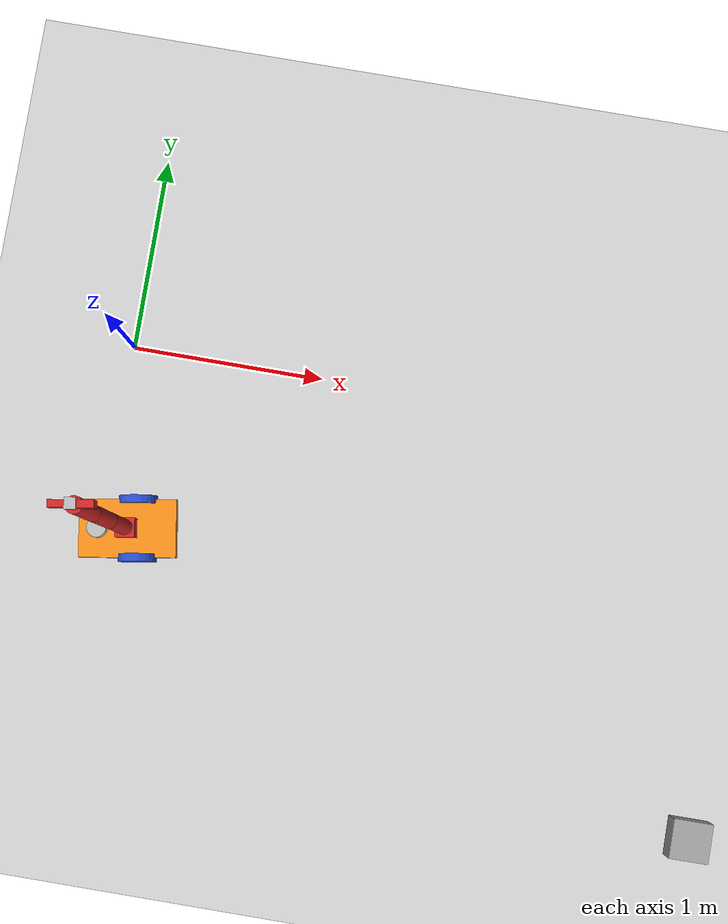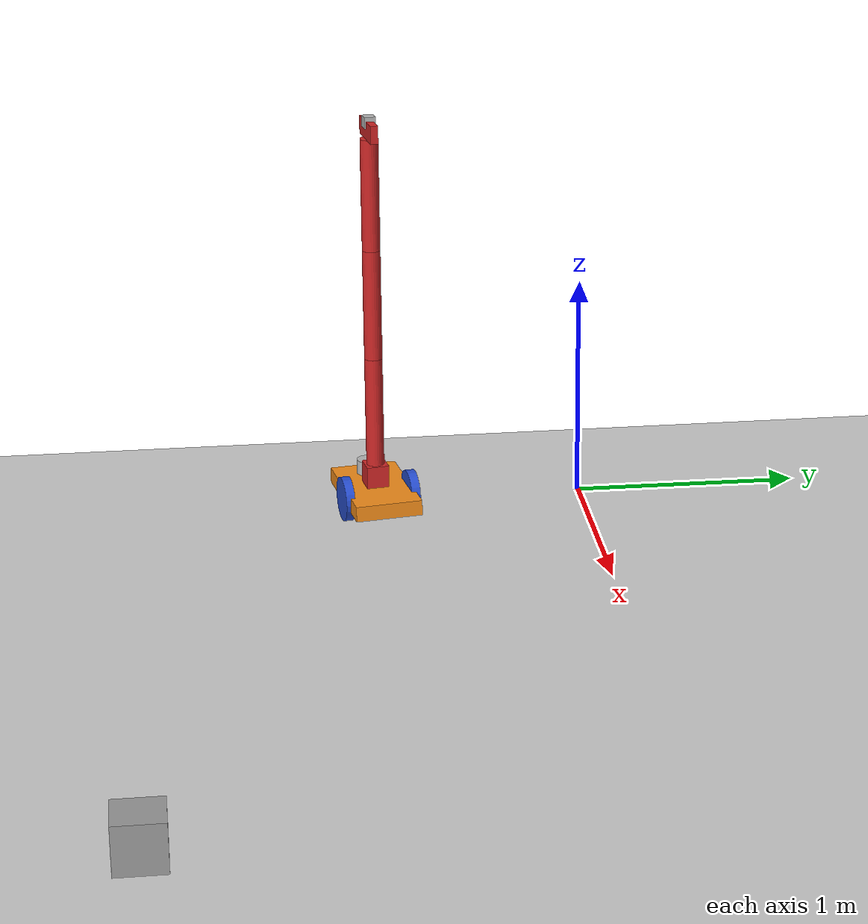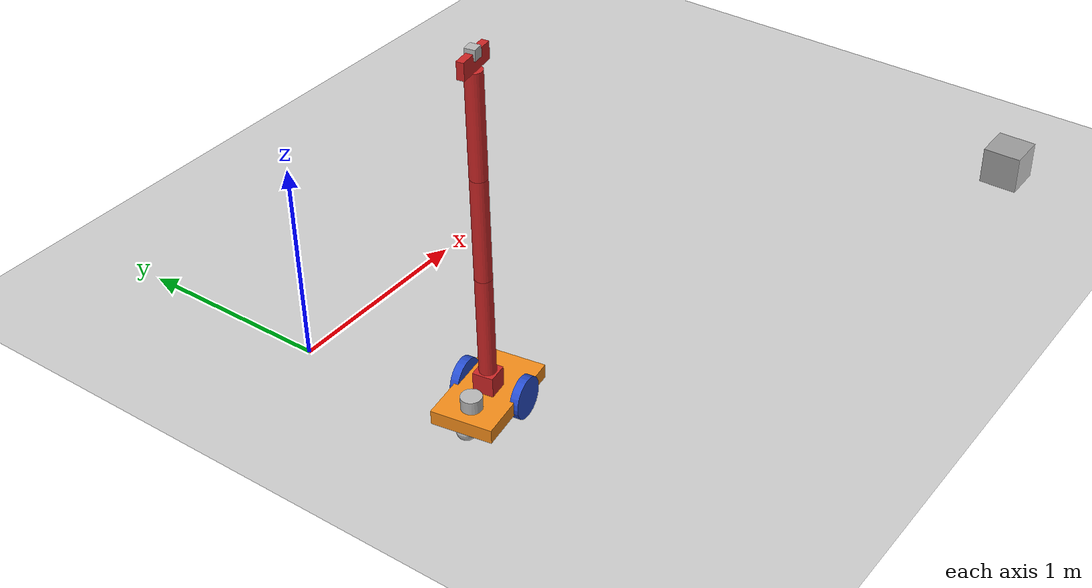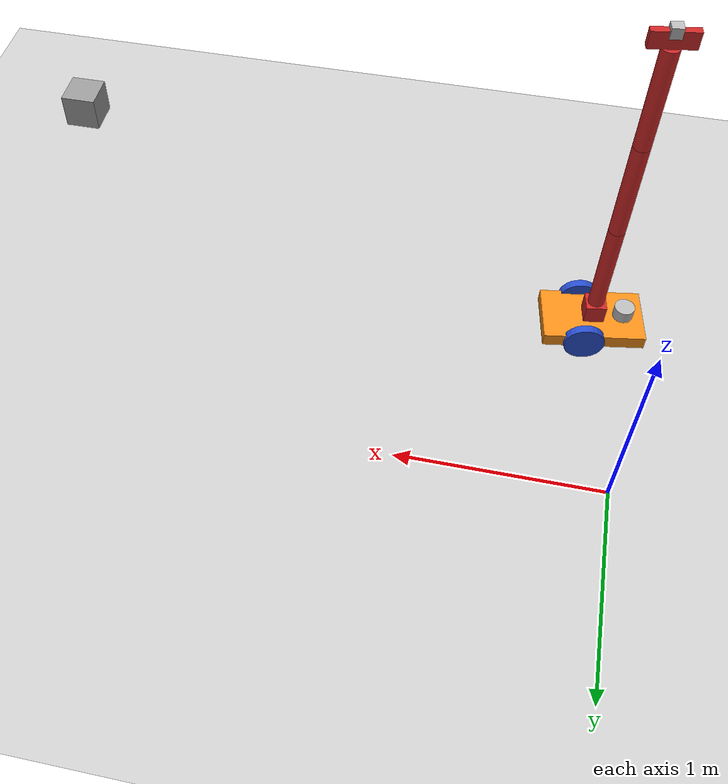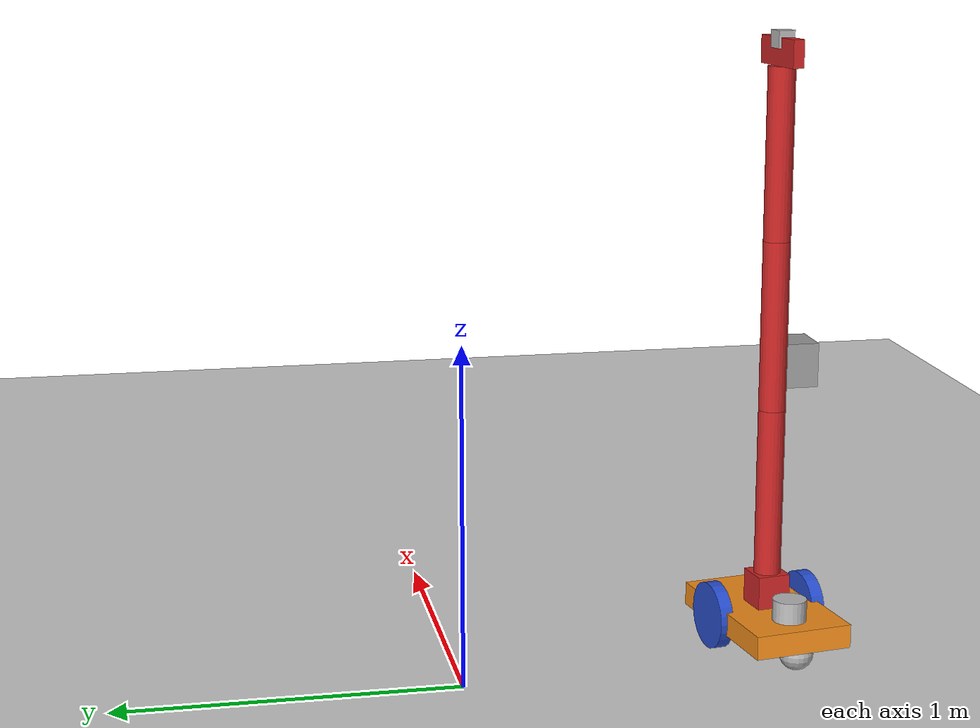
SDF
<sdf version="1.7">
 <world name="default">
  <model name="ground_plane">
   <static>1</static>
   <link name="link">
    <collision name="collision">
     <geometry><plane><normal>0 0 1</normal><size>100 100</size></plane></geometry>
     <surface>
      <contact><collide_bitmask>65535</collide_bitmask></contact>
      <friction><ode><mu>100</mu><mu2>50</mu2></ode></friction>
     </surface>
    </collision>
    <visual name="visual">
     <cast_shadows>0</cast_shadows>
     <geometry><plane><normal>0 0 1</normal><size>100 100</size></plane></geometry>
     <material>
      <script><uri>file://media/materials/scripts/gazebo.material</uri><name>Gazebo/Grey</name></script>
     </material>
    </visual>
   </link>
  </model>
  <model name="marker15_box">
   <link name="marker">
    <inertial>
     <mass>0.1</mass>
     <inertia><ixx>0</ixx><ixy>0</ixy><ixz>0</ixz><iyy>0</iyy><iyz>0</iyz><izz>0</izz></inertia>
    </inertial>
    <self_collide>1</self_collide>
    <pose>-0.76428 -0.101106 0.120004 -0.015494 1.56996 -0.015507</pose>
    <visual name="visual">
     <geometry><box><size>0.2 0.2 0.001</size></box></geometry>
     <material>
      <script>
       <uri>model://marker15/material/scripts</uri>
       <uri>model://marker15/material/textures</uri>
       <name>Aruco/marker15</name>
      </script>
      <shader type="pixel"><normal_map>__default__</normal_map></shader>
      <emissive>0 0 0 1</emissive>
      <ambient>1 1 1 1</ambient>
      <diffuse>1 1 1 1</diffuse>
      <specular>0 0 0 1</specular>
     </material>
    </visual>
    <collision name="collision">
     <geometry><box><size>0.2 0.2 0.02</size></box></geometry>
     <surface>
      <friction>
       <ode><mu>1</mu><mu2>1</mu2><fdir1>0 0 0</fdir1><slip1>0</slip1><slip2>0</slip2></ode>
       <torsional>
        <coefficient>1</coefficient>
        <patch_radius>0</patch_radius>
        <surface_radius>0</surface_radius>
        <use_patch_radius>1</use_patch_radius>
        <ode><slip>0</slip></ode>
       </torsional>
      </friction>
      <bounce><restitution_coefficient>0</restitution_coefficient><threshold>1e+06</threshold></bounce>
      <contact>
       <collide_without_contact>0</collide_without_contact>
       <collide_without_contact_bitmask>1</collide_without_contact_bitmask>
       <collide_bitmask>1</collide_bitmask>
       <ode>
        <soft_cfm>0</soft_cfm>
        <soft_erp>0.2</soft_erp>
        <kp>1e+13</kp>
        <kd>1</kd>
        <max_vel>0.01</max_vel>
        <min_depth>0</min_depth>
       </ode>
       <bullet>
        <split_impulse>1</split_impulse>
        <split_impulse_penetration_threshold>-0.01</split_impulse_penetration_threshold>
        <soft_cfm>0</soft_cfm>
        <soft_erp>0.2</soft_erp>
        <kp>1e+13</kp>
        <kd>1</kd>
       </bullet>
      </contact>
     </surface>
    </collision>
   </link>
   <link name="link_1">
    <inertial>
     <mass>1</mass>
     <inertia>
      <ixx>0.166667</ixx>
      <ixy>0</ixy>
      <ixz>0</ixz>
      <iyy>0.166667</iyy>
      <iyz>0</iyz>
      <izz>0.166667</izz>
     </inertia>
    </inertial>
    <pose>-0.86428 -0.101106 0.12 -1.3e-05 -4.2e-05 0</pose>
    <visual name="visual">
     <geometry><box><size>0.2 0.2 0.2</size></box></geometry>
     <material>
      <lighting>1</lighting>
      <script><uri>file://media/materials/scripts/gazebo.material</uri><name>Gazebo/Grey</name></script>
      <shader type="pixel"><normal_map>__default__</normal_map></shader>
      <emissive>0 0 0 1</emissive>
      <ambient>0.3 0.3 0.3 1</ambient>
      <diffuse>0.7 0.7 0.7 1</diffuse>
      <specular>0.01 0.01 0.01 1</specular>
     </material>
    </visual>
    <collision name="collision">
     <geometry><box><size>0.2 0.2 0.2</size></box></geometry>
     <surface>
      <friction>
       <ode><mu>1</mu><mu2>1</mu2><fdir1>0 0 0</fdir1><slip1>0</slip1><slip2>0</slip2></ode>
       <torsional>
        <coefficient>1</coefficient>
        <patch_radius>0</patch_radius>
        <surface_radius>0</surface_radius>
        <use_patch_radius>1</use_patch_radius>
        <ode><slip>0</slip></ode>
       </torsional>
      </friction>
      <bounce><restitution_coefficient>0</restitution_coefficient><threshold>1e+06</threshold></bounce>
      <contact>
       <collide_without_contact>0</collide_without_contact>
       <collide_without_contact_bitmask>1</collide_without_contact_bitmask>
       <collide_bitmask>1</collide_bitmask>
       <ode>
        <soft_cfm>0</soft_cfm>
        <soft_erp>0.2</soft_erp>
        <kp>1e+13</kp>
        <kd>1</kd>
        <max_vel>0.01</max_vel>
        <min_depth>0</min_depth>
       </ode>
       <bullet>
        <split_impulse>1</split_impulse>
        <split_impulse_penetration_threshold>-0.01</split_impulse_penetration_threshold>
        <soft_cfm>0</soft_cfm>
        <soft_erp>0.2</soft_erp>
        <kp>1e+13</kp>
        <kd>1</kd>
       </bullet>
      </contact>
     </surface>
    </collision>
   </link>
   <joint name="link_1_JOINT_3" type="fixed">
    <parent>link_1</parent>
    <child>marker</child>
    <physics>
     <ode><limit><cfm>0</cfm><erp>0.2</erp></limit><suspension><cfm>0</cfm><erp>0.2</erp></suspension></ode>
    </physics>
   </joint>
   <static>0</static>
   <pose>3.33725 -2.89021 -0.02001 1.3e-05 1.9e-05 -1.56766</pose>
  </model>
  <model name="robot">
   <link name="base_link">
    <inertial>
     <pose>0.013636 0 0.095455 0 -0 0</pose>
     <mass>11</mass>
     <inertia>
      <ixx>0.0432727</ixx>
      <ixy>0</ixy>
      <ixz>0.00681818</ixz>
      <iyy>0.130394</iyy>
      <iyz>0</iyz>
      <izz>0.127913</izz>
     </inertia>
    </inertial>
    <collision name="base_link_fixed_joint_lump__collision_chassis_collision">
     <geometry><box><size>0.5 0.3 0.07</size></box></geometry>
    </collision>
    <collision name="base_link_fixed_joint_lump__caster_front_collision_collision_1">
     <pose>0.35 0 -0.05 0 -0 0</pose>
     <geometry><sphere><radius>0.05</radius></sphere></geometry>
    </collision>
    <collision name="base_link_fixed_joint_lump__laser_collision_2">
     <pose>0.15 0 0.05 0 -0 0</pose>
     <geometry><cylinder><length>0.1</length><radius>0.05</radius></cylinder></geometry>
    </collision>
    <visual name="base_link_visual">
     <geometry><box><size>0.5 0.3 0.07</size></box></geometry>
     <material>
      <script><name>Gazebo/Orange</name><uri>file://media/materials/scripts/gazebo.material</uri></script>
     </material>
    </visual>
    <visual name="base_link_fixed_joint_lump__caster_front_visual_visual_1">
     <pose>0.2 0 -0.05 0 -0 0</pose>
     <geometry><sphere><radius>0.05</radius></sphere></geometry>
    </visual>
    <visual name="base_link_fixed_joint_lump__laser_visual_2">
     <pose>0.15 0 0.05 0 -0 0</pose>
     <geometry><cylinder><length>0.1</length><radius>0.05</radius></cylinder></geometry>
    </visual>
    <sensor name="head_hokuyo_sensor" type="ray">
     <visualize>0</visualize>
     <update_rate>20</update_rate>
     <ray>
      <scan>
       <horizontal>
        <samples>720</samples>
        <resolution>1</resolution>
        <min_angle>-1.5708</min_angle>
        <max_angle>1.5708</max_angle>
       </horizontal>
       <vertical><samples>1</samples><min_angle>0</min_angle><max_angle>0</max_angle></vertical>
      </scan>
      <range><min>0.1</min><max>10</max><resolution>0.01</resolution></range>
      <noise><type>gaussian</type><mean>0</mean><stddev>0.01</stddev></noise>
     </ray>
     <plugin name="gazebo_ros_head_hokuyo_controller" filename="libgazebo_ros_laser.so">
      <topicName>scan</topicName>
      <frameName>laser</frameName>
      <robotNamespace>/</robotNamespace>
     </plugin>
     <pose>0.15 0 0.05 0 -0 0</pose>
    </sensor>
   </link>
   <joint name="arm_base_to_base" type="revolute">
    <pose relative_to="base_link">0 0 0.085 0 -0 0</pose>
    <parent>base_link</parent>
    <child>arm_base_link</child>
    <axis>
     <xyz>0 0 1</xyz>
     <limit><lower>-3.14</lower><upper>3.14</upper><effort>1000</effort><velocity>0.2</velocity></limit>
     <dynamics><spring_reference>0</spring_reference><spring_stiffness>0</spring_stiffness></dynamics>
    </axis>
   </joint>
   <link name="arm_base_link">
    <pose relative_to="arm_base_to_base">0 0 0 0 -0 0</pose>
    <inertial>
     <mass>1</mass>
     <inertia>
      <ixx>4.16667e-05</ixx>
      <ixy>0</ixy>
      <ixz>0</ixz>
      <iyy>4.16667e-05</iyy>
      <iyz>0</iyz>
      <izz>4.16667e-05</izz>
     </inertia>
    </inertial>
    <collision name="arm_base_link_collision"><geometry><box><size>0.1 0.1 0.1</size></box></geometry></collision>
    <visual name="arm_base_link_visual">
     <geometry><box><size>0.1 0.1 0.1</size></box></geometry>
     <material>
      <script><name>Gazebo/Red</name><uri>file://media/materials/scripts/gazebo.material</uri></script>
     </material>
    </visual>
   </link>
   <joint name="arm_joint_01" type="revolute">
    <pose relative_to="arm_base_link">0 0 0.05 0 -0 0</pose>
    <parent>arm_base_link</parent>
    <child>arm_link_01</child>
    <axis>
     <xyz>1 0 0</xyz>
     <limit><lower>-1.57</lower><upper>1.57</upper><effort>1000</effort><velocity>0.2</velocity></limit>
     <dynamics><spring_reference>0</spring_reference><spring_stiffness>0</spring_stiffness></dynamics>
    </axis>
   </joint>
   <link name="arm_link_01">
    <pose relative_to="arm_joint_01">0 0 0 0 -0 0</pose>
    <inertial>
     <mass>0.01</mass>
     <inertia>
      <ixx>1.0279e-05</ixx>
      <ixy>0</ixy>
      <ixz>0</ixz>
      <iyy>1.0279e-05</iyy>
      <iyz>0</iyz>
      <izz>7.225e-06</izz>
     </inertia>
    </inertial>
    <collision name="arm_link_01_collision">
     <pose>0 0 0.25 0 -0 0</pose>
     <geometry><cylinder><length>0.5</length><radius>0.04</radius></cylinder></geometry>
    </collision>
    <visual name="arm_link_01_visual">
     <pose>0 0 0.25 0 -0 0</pose>
     <geometry><cylinder><length>0.5</length><radius>0.04</radius></cylinder></geometry>
     <material>
      <script><name>Gazebo/Red</name><uri>file://media/materials/scripts/gazebo.material</uri></script>
     </material>
    </visual>
   </link>
   <joint name="arm_joint_02" type="revolute">
    <pose relative_to="arm_link_01">0 0 0.5 0 -0 0</pose>
    <parent>arm_link_01</parent>
    <child>arm_link_02</child>
    <axis>
     <xyz>1 0 0</xyz>
     <limit><lower>-3</lower><upper>3</upper><effort>1000</effort><velocity>0.2</velocity></limit>
     <dynamics><spring_reference>0</spring_reference><spring_stiffness>0</spring_stiffness></dynamics>
    </axis>
    <physics>
     <provide_feedback>1</provide_feedback>
     <ode><limit><cfm>0</cfm><erp>0.2</erp></limit><provide_feedback>1</provide_feedback></ode>
    </physics>
   </joint>
   <link name="arm_link_02">
    <pose relative_to="arm_joint_02">0 0 0 0 -0 0</pose>
    <inertial>
     <mass>0.01</mass>
     <inertia>
      <ixx>1.0279e-05</ixx>
      <ixy>0</ixy>
      <ixz>0</ixz>
      <iyy>1.0279e-05</iyy>
      <iyz>0</iyz>
      <izz>7.225e-06</izz>
     </inertia>
    </inertial>
    <collision name="arm_link_02_collision">
     <pose>0 0 0.25 0 -0 0</pose>
     <geometry><cylinder><length>0.5</length><radius>0.04</radius></cylinder></geometry>
    </collision>
    <visual name="arm_link_02_visual">
     <pose>0 0 0.25 0 -0 0</pose>
     <geometry><cylinder><length>0.5</length><radius>0.04</radius></cylinder></geometry>
     <material>
      <script><name>Gazebo/Red</name><uri>file://media/materials/scripts/gazebo.material</uri></script>
     </material>
    </visual>
   </link>
   <joint name="arm_joint_03" type="revolute">
    <pose relative_to="arm_link_02">0 0 0.5 0 -0 0</pose>
    <parent>arm_link_02</parent>
    <child>arm_link_03</child>
    <axis>
     <xyz>1 0 0</xyz>
     <limit><lower>-3</lower><upper>3</upper><effort>1000</effort><velocity>0.2</velocity></limit>
     <dynamics><spring_reference>0</spring_reference><spring_stiffness>0</spring_stiffness></dynamics>
    </axis>
   </joint>
   <link name="arm_link_03">
    <pose relative_to="arm_joint_03">0 0 0 0 -0 0</pose>
    <inertial>
     <mass>0.01</mass>
     <inertia>
      <ixx>1.0279e-05</ixx>
      <ixy>0</ixy>
      <ixz>0</ixz>
      <iyy>1.0279e-05</iyy>
      <iyz>0</iyz>
      <izz>7.225e-06</izz>
     </inertia>
    </inertial>
    <collision name="arm_link_03_collision">
     <pose>0 0 0.25 0 -0 0</pose>
     <geometry><cylinder><length>0.5</length><radius>0.04</radius></cylinder></geometry>
    </collision>
    <visual name="arm_link_03_visual">
     <pose>0 0 0.25 0 -0 0</pose>
     <geometry><cylinder><length>0.5</length><radius>0.04</radius></cylinder></geometry>
     <material>
      <script><name>Gazebo/Red</name><uri>file://media/materials/scripts/gazebo.material</uri></script>
     </material>
    </visual>
   </link>
   <joint name="arm_joint_04" type="revolute">
    <pose relative_to="arm_link_03">0 0 0.5 0 -0 0</pose>
    <parent>arm_link_03</parent>
    <child>cluedo_link</child>
    <axis>
     <xyz>1 0 0</xyz>
     <limit><lower>-1.57</lower><upper>1.57</upper><effort>1000</effort><velocity>0.5</velocity></limit>
     <dynamics><spring_reference>0</spring_reference><spring_stiffness>0</spring_stiffness></dynamics>
    </axis>
   </joint>
   <link name="cluedo_link">
    <pose relative_to="arm_joint_04">0 0 0 0 -0 0</pose>
    <inertial>
     <pose>0 0 0.0001 0 -0 0</pose>
     <mass>0.00501</mass>
     <inertia>
      <ixx>1.1304e-05</ixx>
      <ixy>-1.03398e-25</ixy>
      <ixz>0</ixz>
      <iyy>1.1304e-05</iyy>
      <iyz>0</iyz>
      <izz>8.225e-06</izz>
     </inertia>
    </inertial>
    <collision name="cluedo_link_collision">
     <pose>0 0 0.04 0 -0 1.57</pose>
     <geometry><box><size>0.034 0.2 0.08</size></box></geometry>
    </collision>
    <collision name="cluedo_link_fixed_joint_lump__camera_link_collision_1">
     <pose>0 0 0.075 0 -0 1.57</pose>
     <geometry><box><size>0.05 0.05 0.05</size></box></geometry>
    </collision>
    <visual name="cluedo_link_visual">
     <pose>0 0 0.04 0 -0 1.57</pose>
     <geometry><box><size>0.034 0.2 0.08</size></box></geometry>
     <material>
      <script><name>Gazebo/Red</name><uri>file://media/materials/scripts/gazebo.material</uri></script>
     </material>
    </visual>
    <visual name="cluedo_link_fixed_joint_lump__camera_link_visual_1">
     <pose>0 0 0.075 0 -0 1.57</pose>
     <geometry><box><size>0.05 0.05 0.05</size></box></geometry>
    </visual>
    <sensor name="camera1" type="camera">
     <update_rate>30</update_rate>
     <camera name="head">
      <horizontal_fov>1.39626</horizontal_fov>
      <image><width>800</width><height>800</height><format>R8G8B8</format></image>
      <clip><near>0.02</near><far>300</far></clip>
      <noise><type>gaussian</type><mean>0</mean><stddev>0.007</stddev></noise>
     </camera>
     <plugin name="camera_controller" filename="libgazebo_ros_camera.so">
      <alwaysOn>1</alwaysOn>
      <updateRate>0.0</updateRate>
      <cameraName>robot/camera1</cameraName>
      <imageTopicName>image_raw</imageTopicName>
      <cameraInfoTopicName>camera_info</cameraInfoTopicName>
      <frameName>camera_link</frameName>
      <hackBaseline>0.07</hackBaseline>
      <distortionK1>0.0</distortionK1>
      <distortionK2>0.0</distortionK2>
      <distortionK3>0.0</distortionK3>
      <distortionT1>0.0</distortionT1>
      <distortionT2>0.0</distortionT2>
      <robotNamespace>/</robotNamespace>
     </plugin>
     <pose>0 0 0.05 0 -0 1.57</pose>
    </sensor>
   </link>
   <joint name="left_grip_joint" type="prismatic">
    <pose relative_to="cluedo_link">-0.015 0 0 0 -0 0</pose>
    <parent>cluedo_link</parent>
    <child>left_grip_link</child>
    <axis>
     <xyz>1 0 0</xyz>
     <limit><lower>-0.035</lower><upper>0.04</upper><effort>1000</effort><velocity>6.5</velocity></limit>
     <dynamics><spring_reference>0</spring_reference><spring_stiffness>0</spring_stiffness></dynamics>
    </axis>
   </joint>
   <link name="left_grip_link">
    <pose relative_to="left_grip_joint">0 0 0 0 -0 0</pose>
    <inertial>
     <mass>0.001</mass>
     <inertia>
      <ixx>1.0279e-05</ixx>
      <ixy>0</ixy>
      <ixz>0</ixz>
      <iyy>1.0279e-05</iyy>
      <iyz>0</iyz>
      <izz>7.225e-06</izz>
     </inertia>
    </inertial>
    <collision name="left_grip_link_collision">
     <pose>0.001 0.001 0.001 3.14159 9.3e-05 1.57159</pose>
     <geometry><box><size>0.001 0.001 0.001</size></box></geometry>
    </collision>
    <visual name="left_grip_link_visual">
     <pose>0.001 0.001 0.001 3.14159 9.3e-05 1.57159</pose>
     <geometry><box><size>0.001 0.001 0.001</size></box></geometry>
     <material>
      <script><name>Gazebo/White</name><uri>file://media/materials/scripts/gazebo.material</uri></script>
     </material>
    </visual>
   </link>
   <joint name="right_grip_joint" type="prismatic">
    <pose relative_to="cluedo_link">-0.015 0 0 0 -0 0</pose>
    <parent>cluedo_link</parent>
    <child>right_grip_link</child>
    <axis>
     <xyz>1 0 0</xyz>
     <limit><lower>-0.04</lower><upper>0.035</upper><effort>1000</effort><velocity>6.5</velocity></limit>
     <dynamics><spring_reference>0</spring_reference><spring_stiffness>0</spring_stiffness></dynamics>
    </axis>
   </joint>
   <link name="right_grip_link">
    <pose relative_to="right_grip_joint">0 0 0 0 -0 0</pose>
    <inertial>
     <mass>0.001</mass>
     <inertia>
      <ixx>1.0279e-05</ixx>
      <ixy>0</ixy>
      <ixz>0</ixz>
      <iyy>1.0279e-05</iyy>
      <iyz>0</iyz>
      <izz>7.225e-06</izz>
     </inertia>
    </inertial>
    <collision name="right_grip_link_collision">
     <pose>-0.001 0.001 0.001 3.14159 9.3e-05 1.57159</pose>
     <geometry><box><size>0.001 0.001 0.001</size></box></geometry>
    </collision>
    <visual name="right_grip_link_visual">
     <pose>-0.001 0.001 0.001 3.14159 9.3e-05 1.57159</pose>
     <geometry><box><size>0.001 0.001 0.001</size></box></geometry>
     <material>
      <script><name>Gazebo/White</name><uri>file://media/materials/scripts/gazebo.material</uri></script>
     </material>
    </visual>
   </link>
   <joint name="joint_left_wheel" type="revolute">
    <pose relative_to="base_link">-0.05 0.15 0 0 -0 0</pose>
    <parent>base_link</parent>
    <child>link_left_wheel</child>
    <axis>
     <xyz>0 1 0</xyz>
     <limit><effort>10000</effort><velocity>1000</velocity><lower>-1e+16</lower><upper>1e+16</upper></limit>
     <dynamics><spring_reference>0</spring_reference><spring_stiffness>0</spring_stiffness></dynamics>
    </axis>
   </joint>
   <link name="link_left_wheel">
    <pose relative_to="joint_left_wheel">0 0 0 0 -0 0</pose>
    <inertial>
     <pose>0 0 0 -0 1.5707 1.5707</pose>
     <mass>0.2</mass>
     <inertia>
      <ixx>0.000526667</ixx>
      <ixy>0</ixy>
      <ixz>0</ixz>
      <iyy>0.000526667</iyy>
      <iyz>0</iyz>
      <izz>0.001</izz>
     </inertia>
    </inertial>
    <collision name="link_left_wheel_fixed_joint_lump__link_right_wheel_collision_collision">
     <pose>0 0 0 1.57089 1.57079 -3.14159</pose>
     <geometry><cylinder><length>0.04</length><radius>0.1</radius></cylinder></geometry>
    </collision>
    <visual name="link_left_wheel_visual_visual">
     <pose>0 0 0 1.57089 1.57079 -3.14159</pose>
     <geometry><cylinder><length>0.04</length><radius>0.1</radius></cylinder></geometry>
     <material>
      <script><name>Gazebo/Blue</name><uri>file://media/materials/scripts/gazebo.material</uri></script>
     </material>
    </visual>
   </link>
   <joint name="joint_right_wheel" type="revolute">
    <pose relative_to="base_link">-0.05 -0.15 0 0 -0 0</pose>
    <parent>base_link</parent>
    <child>link_right_wheel</child>
    <axis>
     <xyz>0 1 0</xyz>
     <limit><effort>10000</effort><velocity>1000</velocity><lower>-1e+16</lower><upper>1e+16</upper></limit>
     <dynamics><spring_reference>0</spring_reference><spring_stiffness>0</spring_stiffness></dynamics>
    </axis>
   </joint>
   <link name="link_right_wheel">
    <pose relative_to="joint_right_wheel">0 0 0 0 -0 0</pose>
    <inertial>
     <pose>0 0 0 -0 1.5707 1.5707</pose>
     <mass>0.2</mass>
     <inertia>
      <ixx>0.000526667</ixx>
      <ixy>0</ixy>
      <ixz>0</ixz>
      <iyy>0.000526667</iyy>
      <iyz>0</iyz>
      <izz>0.001</izz>
     </inertia>
    </inertial>
    <collision name="link_right_wheel_collision_collision">
     <pose>0 0 0 1.57089 1.57079 -3.14159</pose>
     <geometry><cylinder><length>0.04</length><radius>0.1</radius></cylinder></geometry>
    </collision>
    <visual name="link_right_wheel_visual_visual">
     <pose>0 0 0 1.57089 1.57079 -3.14159</pose>
     <geometry><cylinder><length>0.04</length><radius>0.1</radius></cylinder></geometry>
     <material>
      <script><name>Gazebo/Blue</name><uri>file://media/materials/scripts/gazebo.material</uri></script>
     </material>
    </visual>
   </link>
   <plugin name="ft_sensor" filename="libgazebo_ros_ft_sensor.so">
    <updateRate>100.0</updateRate>
    <topicName>ft_sensor_topic</topicName>
    <jointName>arm_joint_02</jointName>
    <robotNamespace>/</robotNamespace>
   </plugin>
   <plugin name="differential_drive_controller" filename="libgazebo_ros_diff_drive.so">
    <legacyMode>1</legacyMode>
    <alwaysOn>1</alwaysOn>
    <updateRate>20</updateRate>
    <leftJoint>joint_left_wheel</leftJoint>
    <rightJoint>joint_right_wheel</rightJoint>
    <wheelSeparation>0.3</wheelSeparation>
    <wheelDiameter>0.2</wheelDiameter>
    <torque>0.1</torque>
    <commandTopic>cmd_vel</commandTopic>
    <odometryTopic>odom</odometryTopic>
    <odometryFrame>odom</odometryFrame>
    <robotBaseFrame>base_link</robotBaseFrame>
    <rosDebugLevel>na</rosDebugLevel>
    <publishWheelTF>1</publishWheelTF>
    <publishWheelJointState>1</publishWheelJointState>
    <wheelAcceleration>0</wheelAcceleration>
    <wheelTorque>5</wheelTorque>
    <odometrySource>1</odometrySource>
    <publishTf>1</publishTf>
    <robotNamespace>/</robotNamespace>
   </plugin>
   <plugin name="gazebo_ros_control" filename="libgazebo_ros_control.so">
    <robotNamespace>m2wr</robotNamespace>
    <robotSimType>gazebo_ros_control/DefaultRobotHWSim</robotSimType>
    <legacyModeNS>1</legacyModeNS>
   </plugin>
   <static>0</static>
   <plugin name="gazebo_ros_control" filename="libgazebo_ros_control.so">
    <robotNamespace>/</robotNamespace>
   </plugin>
   <pose>0.150257 -0.943753 0.099998 -6e-06 -7e-06 -2.98437</pose>
  </model>
 </world>
</sdf>
